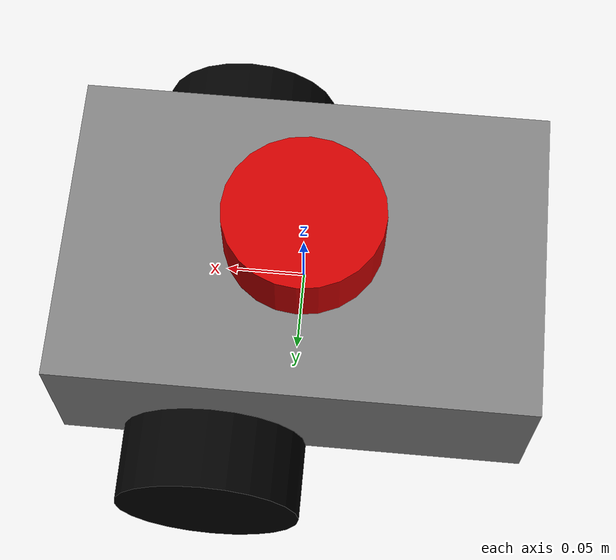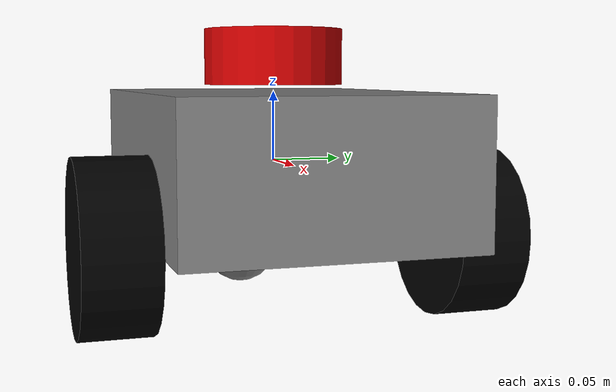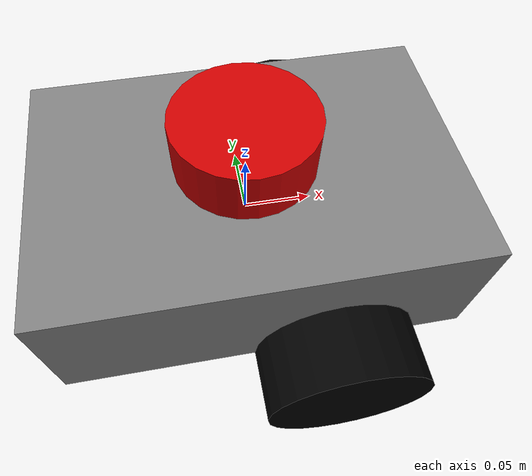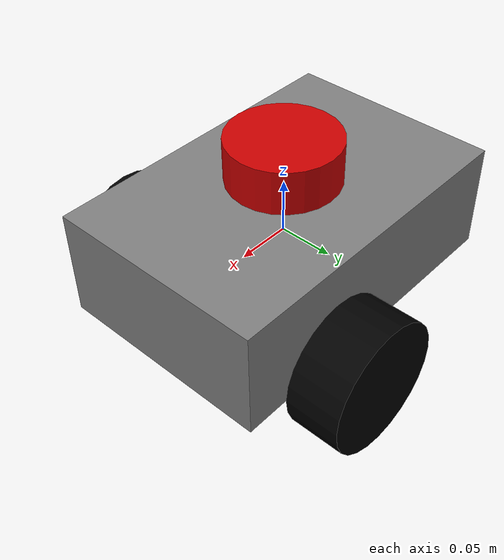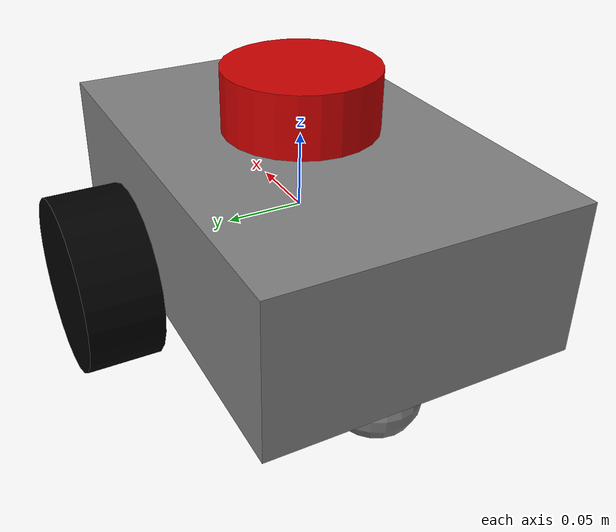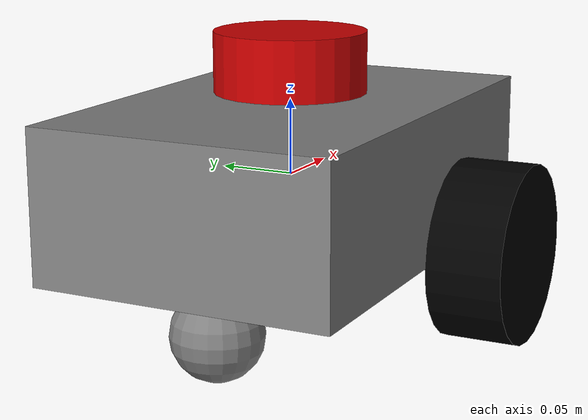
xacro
<?xml version="1.0"?>
<robot name="diff_drive_robot" xmlns:xacro="http://www.ros.org/wiki/xacro">

  <xacro:arg name="namespace" default="robot"/>
  <xacro:property name="ns" value="$(arg namespace)"/>

  <!-- ───── Links ───── -->

  <link name="base_link">
    <visual>
      <geometry><box size="0.3 0.2 0.1"/></geometry>
      <material name="gray"><color rgba="0.5 0.5 0.5 1"/></material>
    </visual>
    <collision>
      <geometry><box size="0.3 0.2 0.1"/></geometry>
    </collision>
    <inertial>
      <mass value="2.0"/>
      <inertia ixx="0.008333" ixy="0" ixz="0"
                               iyy="0.016667" iyz="0"
                                              izz="0.021667"/>
    </inertial>
  </link>

  <link name="left_wheel">
    <visual>
      <geometry><cylinder length="0.05" radius="0.06"/></geometry>
      <origin rpy="1.5708 0 0" xyz="0 0 0"/>
      <material name="black"><color rgba="0 0 0 1"/></material>
    </visual>
    <collision>
      <geometry><cylinder length="0.05" radius="0.06"/></geometry>
      <origin rpy="1.5708 0 0" xyz="0 0 0"/>
    </collision>
    <inertial>
      <mass value="0.5"/>
      <inertia ixx="0.000554" ixy="0" ixz="0"
                               iyy="0.000900" iyz="0"
                                              izz="0.000554"/>
    </inertial>
  </link>

  <link name="right_wheel">
    <visual>
      <geometry><cylinder length="0.05" radius="0.06"/></geometry>
      <origin rpy="1.5708 0 0" xyz="0 0 0"/>
      <material name="black"><color rgba="0 0 0 1"/></material>
    </visual>
    <collision>
      <geometry><cylinder length="0.05" radius="0.06"/></geometry>
      <origin rpy="1.5708 0 0" xyz="0 0 0"/>
    </collision>
    <inertial>
      <mass value="0.5"/>
      <inertia ixx="0.000554" ixy="0" ixz="0"
                               iyy="0.000900" iyz="0"
                                              izz="0.000554"/>
    </inertial>
  </link>

  <link name="caster_wheel">
    <visual>
      <geometry><sphere radius="0.03"/></geometry>
      <material name="gray"><color rgba="0.5 0.5 0.5 1"/></material>
    </visual>
    <collision>
      <geometry><sphere radius="0.03"/></geometry>
    </collision>
    <inertial>
      <mass value="0.1"/>
      <inertia ixx="0.000036" ixy="0" ixz="0"
                               iyy="0.000036" iyz="0"
                                              izz="0.000036"/>
    </inertial>
  </link>

  <link name="laser_frame">
    <visual>
      <geometry><cylinder length="0.04" radius="0.05"/></geometry>
      <material name="red"><color rgba="0.8 0 0 1"/></material>
    </visual>
    <collision>
      <geometry><cylinder length="0.04" radius="0.05"/></geometry>
    </collision>
    <inertial>
      <mass value="0.1"/>
      <inertia ixx="0.000076" ixy="0" ixz="0"
                               iyy="0.000076" iyz="0"
                                              izz="0.000125"/>
    </inertial>
  </link>

  <!-- ───── Joints ───── -->

  <joint name="left_wheel_joint" type="continuous">
    <parent link="base_link"/>
    <child  link="left_wheel"/>
    <origin xyz="0.05 0.125 -0.05" rpy="0 0 0"/>
    <axis   xyz="0 1 0"/>
    <limit  effort="10" velocity="10"/>
    <dynamics damping="0.1" friction="0.0"/>
  </joint>

  <joint name="right_wheel_joint" type="continuous">
    <parent link="base_link"/>
    <child  link="right_wheel"/>
    <origin xyz="0.05 -0.125 -0.05" rpy="0 0 0"/>
    <axis   xyz="0 1 0"/>
    <limit  effort="10" velocity="10"/>
    <dynamics damping="0.1" friction="0.0"/>
  </joint>

  <joint name="caster_wheel_joint" type="fixed">
    <parent link="base_link"/>
    <child  link="caster_wheel"/>
    <origin xyz="-0.1 0 -0.08" rpy="0 0 0"/>
  </joint>

  <joint name="laser_joint" type="fixed">
    <parent link="base_link"/>
    <child  link="laser_frame"/>
    <origin xyz="0.0 0 0.075" rpy="0 0 0"/>
  </joint>

  <!-- ───── Gazebo: wheel friction ───── -->

  <gazebo reference="left_wheel">
    <collision><surface><friction>
      <ode><mu>1.0</mu><mu2>1.0</mu2></ode>
    </friction></surface></collision>
  </gazebo>

  <gazebo reference="right_wheel">
    <collision><surface><friction>
      <ode><mu>1.0</mu><mu2>1.0</mu2></ode>
    </friction></surface></collision>
  </gazebo>

  <gazebo reference="caster_wheel">
    <collision><surface><friction>
      <ode><mu>0</mu><mu2>0</mu2></ode>
    </friction></surface></collision>
  </gazebo>

  <!-- ───── Diff drive ───── -->
  <!-- Topics and TF frame IDs are namespaced; link names above stay generic.
       frame_prefix in robot_state_publisher (set in launch) adds the namespace
       to TF frames published from URDF. -->

  <gazebo>
    <plugin filename="gz-sim-diff-drive-system"
            name="gz::sim::systems::DiffDrive">
      <left_joint>left_wheel_joint</left_joint>
      <right_joint>right_wheel_joint</right_joint>
      <wheel_separation>0.25</wheel_separation>
      <wheel_radius>0.06</wheel_radius>
      <odom_publish_frequency>10</odom_publish_frequency>
      <topic>${ns}/cmd_vel</topic>
      <odom_topic>${ns}/odom</odom_topic>
      <tf_topic>/${ns}/tf</tf_topic>
      <frame_id>${ns}/odom</frame_id>
      <child_frame_id>${ns}/base_link</child_frame_id>
      <max_linear_acceleration>1.0</max_linear_acceleration>
    </plugin>
  </gazebo>

  <gazebo>
    <plugin filename="gz-sim-joint-state-publisher-system"
            name="gz::sim::systems::JointStatePublisher"/>
  </gazebo>

  <!-- ───── 2D LiDAR ───── -->

  <gazebo reference="laser_frame">
    <sensor name="laser" type="gpu_lidar">
      <gz_frame_id>${ns}/laser_frame</gz_frame_id>
      <pose>0 0 0 0 0 0</pose>
      <topic>${ns}/scan</topic>
      <update_rate>10</update_rate>
      <lidar>
        <scan>
          <horizontal>
            <samples>360</samples>
            <resolution>1</resolution>
            <min_angle>-3.14159</min_angle>
            <max_angle>3.14159</max_angle>
          </horizontal>
        </scan>
        <range>
          <min>1.0</min>
          <max>10.0</max>
          <resolution>0.01</resolution>
        </range>
      </lidar>
      <always_on>1</always_on>
      <visualize>true</visualize>
    </sensor>
  </gazebo>

</robot>
